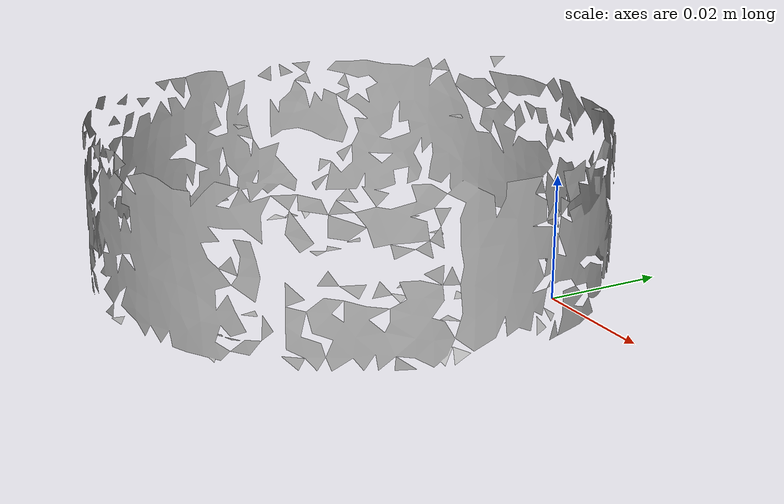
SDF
<?xml version="1.0" ?>
<sdf version="1.4">
  <model name='ycb_007_tuna_fish_can'>
    <link name='body'>
      <inertial>
        <mass>0.171</mass>
        <pose>-0.0259963252348 -0.0221403594463 0.0129895081519 0 0 0</pose>
        <inertia>
          <ixx>8.91004228738e-05</ixx>
          <ixy>2.41024488497e-08</ixy>
          <ixz>1.38449688739e-08</ixz>
          <iyy>8.91950354708e-05</iyy>
          <iyz>2.98356613544e-09</iyz>
          <izz>0.000156203657419</izz>
        </inertia>
      </inertial>
      <visual name='ycb_007_tuna_fish_can_visual'>
        <pose>0 0 0 0 0 0</pose>
        <geometry>
          <mesh>
            <uri>model://ycb_007_tuna_fish_can/meshes/textured.dae</uri>
          </mesh>
        </geometry>
      </visual>
      <collision name='ycb_007_tuna_fish_can_collision'>
        <pose>0 0 0 0 0 0</pose>
        <geometry>
          <mesh>
            <uri>model://ycb_007_tuna_fish_can/meshes/nontextured.stl</uri>
          </mesh>
        </geometry>
        <max_contacts>10</max_contacts>
      </collision>
    </link>
  </model>
</sdf>
